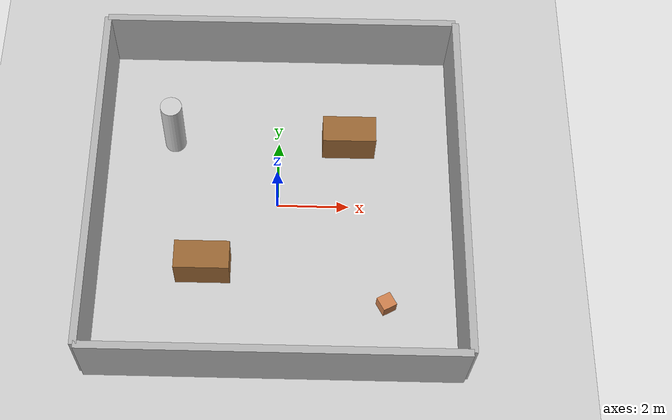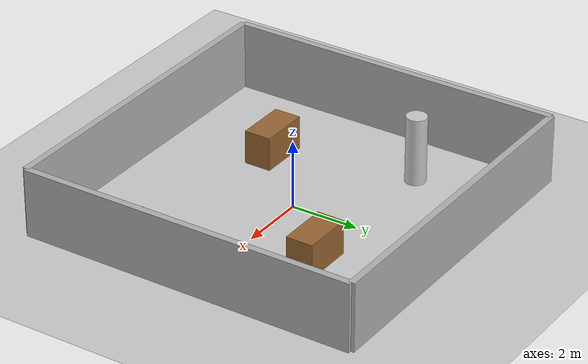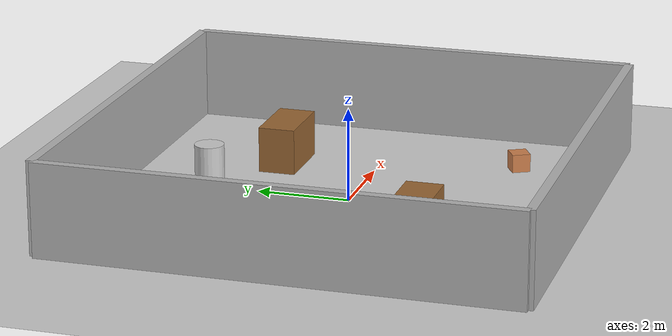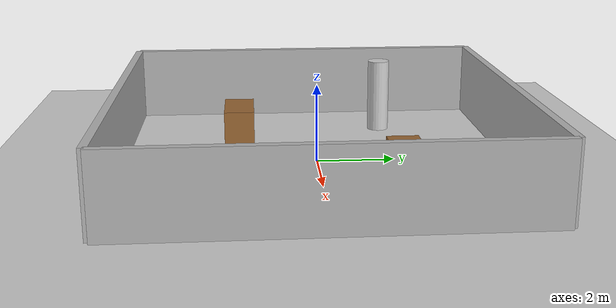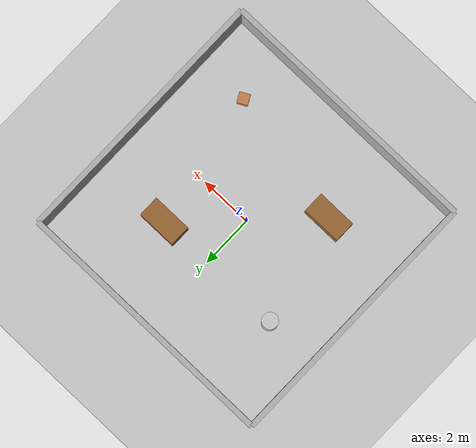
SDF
<?xml version="1.0"?>
<sdf version="1.6">
  <world name="office">

    <!-- Physics -->
    <physics name="default_physics" default="true" type="ode">
      <max_step_size>0.001</max_step_size>
      <real_time_factor>1.0</real_time_factor>
      <real_time_update_rate>1000</real_time_update_rate>
    </physics>

    <!-- Lighting -->
    <light name="sun" type="directional">
      <cast_shadows>false</cast_shadows>
      <pose>0 0 10 0 0 0</pose>
      <diffuse>0.8 0.8 0.8 1</diffuse>
      <specular>0.2 0.2 0.2 1</specular>
      <direction>-0.5 0.1 -0.9</direction>
    </light>

    <!-- Ground -->
    <model name="ground_plane">
      <static>true</static>
      <link name="link">
        <collision name="collision">
          <geometry>
            <plane>
              <normal>0 0 1</normal>
              <size>100 100</size>
            </plane>
          </geometry>
        </collision>
        <visual name="visual">
          <geometry>
            <plane>
              <normal>0 0 1</normal>
              <size>100 100</size>
            </plane>
          </geometry>
          <material>
            <ambient>0.8 0.8 0.8 1</ambient>
            <diffuse>0.8 0.8 0.8 1</diffuse>
          </material>
        </visual>
      </link>
    </model>

    <!-- Office Walls -->
    <!-- Front Wall -->
    <model name="wall_front">
      <static>true</static>
      <pose>0 -5 1 0 0 0</pose>
      <link name="link">
        <collision name="collision">
          <geometry>
            <box>
              <size>10 0.2 2</size>
            </box>
          </geometry>
        </collision>
        <visual name="visual">
          <geometry>
            <box>
              <size>10 0.2 2</size>
            </box>
          </geometry>
          <material>
            <ambient>0.7 0.7 0.7 1</ambient>
            <diffuse>0.7 0.7 0.7 1</diffuse>
          </material>
        </visual>
      </link>
    </model>

    <!-- Back Wall -->
    <model name="wall_back">
      <static>true</static>
      <pose>0 5 1 0 0 0</pose>
      <link name="link">
        <collision name="collision">
          <geometry>
            <box>
              <size>10 0.2 2</size>
            </box>
          </geometry>
        </collision>
        <visual name="visual">
          <geometry>
            <box>
              <size>10 0.2 2</size>
            </box>
          </geometry>
          <material>
            <ambient>0.7 0.7 0.7 1</ambient>
            <diffuse>0.7 0.7 0.7 1</diffuse>
          </material>
        </visual>
      </link>
    </model>

    <!-- Left Wall -->
    <model name="wall_left">
      <static>true</static>
      <pose>-5 0 1 0 0 0</pose>
      <link name="link">
        <collision name="collision">
          <geometry>
            <box>
              <size>0.2 10 2</size>
            </box>
          </geometry>
        </collision>
        <visual name="visual">
          <geometry>
            <box>
              <size>0.2 10 2</size>
            </box>
          </geometry>
          <material>
            <ambient>0.7 0.7 0.7 1</ambient>
            <diffuse>0.7 0.7 0.7 1</diffuse>
          </material>
        </visual>
      </link>
    </model>

    <!-- Right Wall -->
    <model name="wall_right">
      <static>true</static>
      <pose>5 0 1 0 0 0</pose>
      <link name="link">
        <collision name="collision">
          <geometry>
            <box>
              <size>0.2 10 2</size>
            </box>
          </geometry>
        </collision>
        <visual name="visual">
          <geometry>
            <box>
              <size>0.2 10 2</size>
            </box>
          </geometry>
          <material>
            <ambient>0.7 0.7 0.7 1</ambient>
            <diffuse>0.7 0.7 0.7 1</diffuse>
          </material>
        </visual>
      </link>
    </model>

    <!-- Desk 1 -->
    <model name="desk_1">
      <static>true</static>
      <pose>-2 -2 0.5 0 0 0</pose>
      <link name="link">
        <collision name="collision">
          <geometry>
            <box>
              <size>1.5 0.8 1.0</size>
            </box>
          </geometry>
        </collision>
        <visual name="visual">
          <geometry>
            <box>
              <size>1.5 0.8 1.0</size>
            </box>
          </geometry>
          <material>
            <ambient>0.6 0.4 0.2 1</ambient>
            <diffuse>0.6 0.4 0.2 1</diffuse>
          </material>
        </visual>
      </link>
    </model>

    <!-- Desk 2 -->
    <model name="desk_2">
      <static>true</static>
      <pose>2 2 0.5 0 0 0</pose>
      <link name="link">
        <collision name="collision">
          <geometry>
            <box>
              <size>1.5 0.8 1.0</size>
            </box>
          </geometry>
        </collision>
        <visual name="visual">
          <geometry>
            <box>
              <size>1.5 0.8 1.0</size>
            </box>
          </geometry>
          <material>
            <ambient>0.6 0.4 0.2 1</ambient>
            <diffuse>0.6 0.4 0.2 1</diffuse>
          </material>
        </visual>
      </link>
    </model>

    <!-- Pillar -->
    <model name="pillar">
      <static>true</static>
      <pose>-3 2 1 0 0 0</pose>
      <link name="link">
        <collision name="collision">
          <geometry>
            <cylinder>
              <radius>0.3</radius>
              <length>2.0</length>
            </cylinder>
          </geometry>
        </collision>
        <visual name="visual">
          <geometry>
            <cylinder>
              <radius>0.3</radius>
              <length>2.0</length>
            </cylinder>
          </geometry>
          <material>
            <ambient>0.8 0.8 0.8 1</ambient>
            <diffuse>0.8 0.8 0.8 1</diffuse>
          </material>
        </visual>
      </link>
    </model>

    <!-- Boxes -->
    <model name="box_1">
      <static>true</static>
      <pose>3 -3 0.2 0 0 0.5</pose>
      <link name="link">
        <collision name="collision">
          <geometry>
            <box>
              <size>0.4 0.4 0.4</size>
            </box>
          </geometry>
        </collision>
        <visual name="visual">
          <geometry>
            <box>
              <size>0.4 0.4 0.4</size>
            </box>
          </geometry>
          <material>
            <ambient>0.8 0.5 0.3 1</ambient>
            <diffuse>0.8 0.5 0.3 1</diffuse>
          </material>
        </visual>
      </link>
    </model>

  </world>
</sdf>
